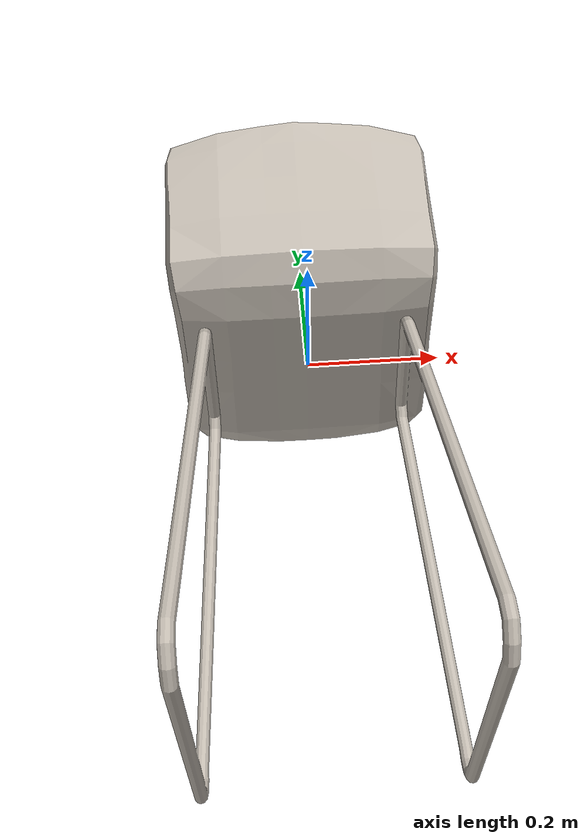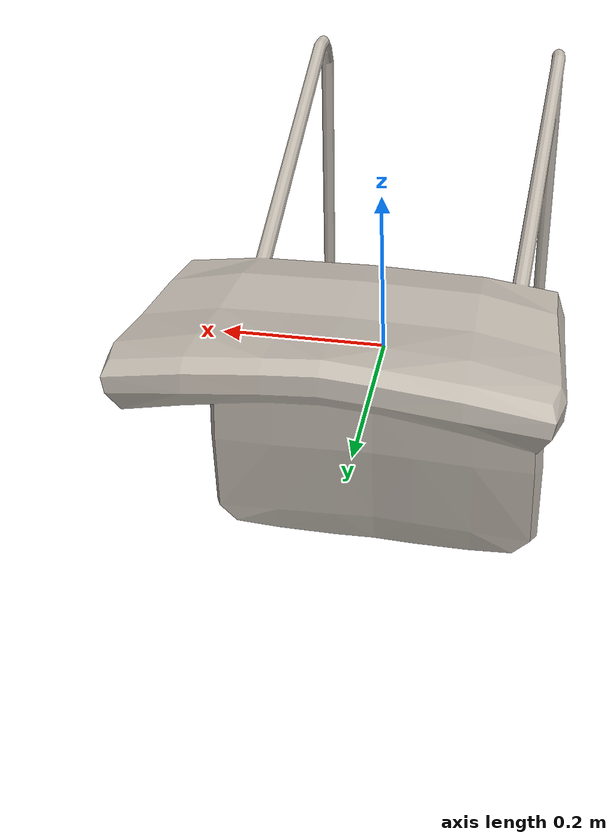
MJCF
<mujoco model="frl_apartment_chair_05">
  <asset>
    <texture type="2d" name="Image_0" file="Image_0.png"/>
    <material name="mat0" texture="Image_0" specular="0.5" shininess="0.5"/>
    <mesh file="frl_apartment_chair_05.obj" name="frl_apartment_chair_05_mesh" scale="1.0 1.0 1.0"/>
  </asset>
  <worldbody>
    <body>
      <body name="object">
        <geom solimp="0.998 0.998 0.001" solref="0.001 1" density="500" friction="0.95 0.3 0.1" type="mesh" mesh="frl_apartment_chair_05_mesh" conaffinity="1" contype="1" group="1" material="mat0"/>
      </body>
      <site rgba="0 0 0 0" size="0.005" pos="0 0 0" name="bottom_site"/>
      <site rgba="0 0 0 0" size="0.005" pos="0 0 0.9" name="top_site"/>
      <site rgba="0 0 0 0" size="0.005" pos="0.25 0.25 0.45" name="horizontal_radius_site"/>
    </body>
  </worldbody>
</mujoco>
